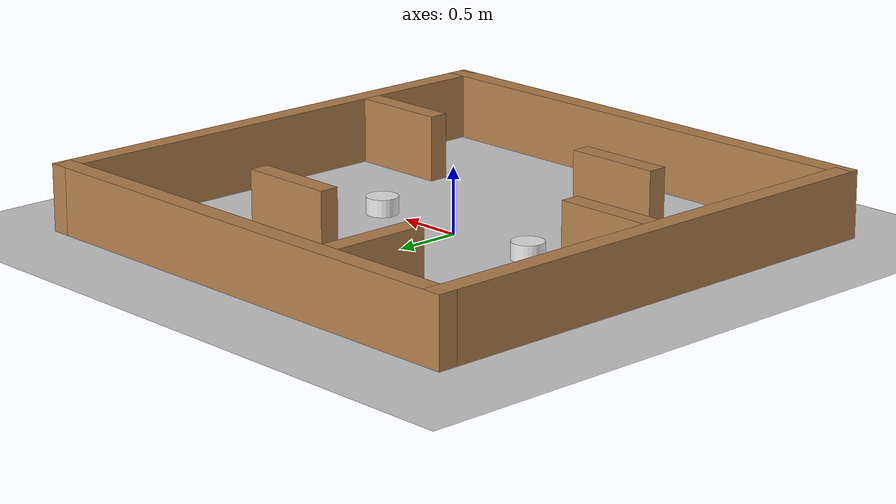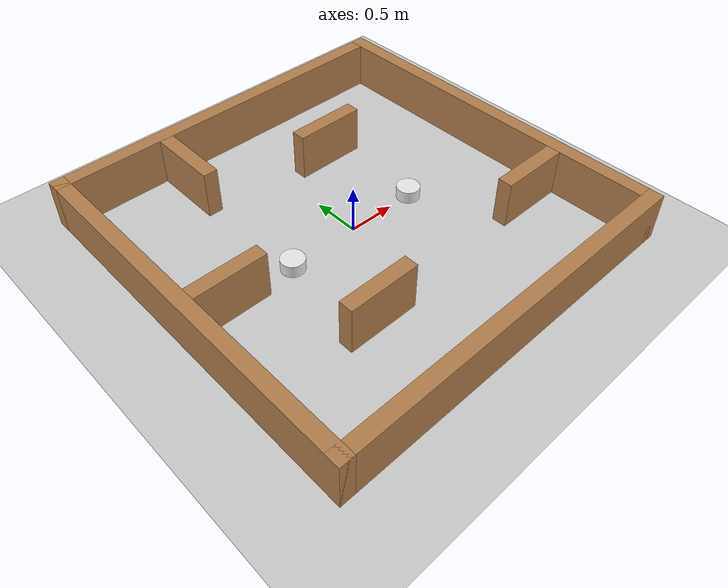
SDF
<sdf version='1.4'>
  <world name='default'>
    <!-- A global light source -->
    <include>
      <uri>model://sun</uri>
    </include>

    <!-- A ground plane -->
    <include>
      <uri>model://ground_plane</uri>
    </include>

    <physics type="ode">
      <real_time_update_rate>1000.0</real_time_update_rate>
      <max_step_size>0.001</max_step_size>
      <real_time_factor>1</real_time_factor>
      <ode>
        <solver>
          <type>quick</type>
          <iters>150</iters>
          <precon_iters>0</precon_iters>
          <sor>1.400000</sor>
          <use_dynamic_moi_rescaling>1</use_dynamic_moi_rescaling>
        </solver>
        <constraints>
          <cfm>0.00001</cfm>
          <erp>0.2</erp>
          <contact_max_correcting_vel>2000.000000</contact_max_correcting_vel>
          <contact_surface_layer>0.01000</contact_surface_layer>
        </constraints>
      </ode>
    </physics>

    <model name='map4'>
        <pose frame=''>0 0 0 0 -0 0</pose>
        <link name='Wall_1'>
        <collision name='Wall_1_Collision'>
            <geometry>
            <box>
                <size>4 0.15 0.5</size>
            </box>
            </geometry>
            <pose frame=''>0 0 0.25 0 -0 0</pose>
        </collision>
        <visual name='Wall_1_Visual'>
            <pose frame=''>0 0 0.25 0 -0 0</pose>
            <geometry>
            <box>
                <size>4 0.15 0.5</size>
            </box>
            </geometry>
            <material>
            <script>
                <uri>file://media/materials/scripts/gazebo.material</uri>
                <name>Gazebo/Wood</name>
            </script>
            <ambient>1 1 1 1</ambient>
            </material>
            <meta>
            <layer>0</layer>
            </meta>
        </visual>
        <pose frame=''>-1.925 -0 0 0 -0 -1.5708</pose>
        </link>
        <link name='Wall_10'>
        <collision name='Wall_10_Collision'>
            <geometry>
            <box>
                <size>0.75 0.15 0.5</size>
            </box>
            </geometry>
            <pose frame=''>0 0 0.25 0 -0 0</pose>
        </collision>
        <visual name='Wall_10_Visual'>
            <pose frame=''>0 0 0.25 0 -0 0</pose>
            <geometry>
            <box>
                <size>0.75 0.15 0.5</size>
            </box>
            </geometry>
            <material>
            <script>
                <uri>file://media/materials/scripts/gazebo.material</uri>
                <name>Gazebo/Wood</name>
            </script>
            <ambient>1 1 1 1</ambient>
            </material>
            <meta>
            <layer>0</layer>
            </meta>
        </visual>
        <pose frame=''>-0.815 1.475 0 0 -0 -1.5708</pose>
        </link>
        <link name='Wall_12'>
        <collision name='Wall_12_Collision'>
            <geometry>
            <box>
                <size>0.75 0.15 0.5</size>
            </box>
            </geometry>
            <pose frame=''>0 0 0.25 0 -0 0</pose>
        </collision>
        <visual name='Wall_12_Visual'>
            <pose frame=''>0 0 0.25 0 -0 0</pose>
            <geometry>
            <box>
                <size>0.75 0.15 0.5</size>
            </box>
            </geometry>
            <material>
            <script>
                <uri>file://media/materials/scripts/gazebo.material</uri>
                <name>Gazebo/Wood</name>
            </script>
            <ambient>1 1 1 1</ambient>
            </material>
            <meta>
            <layer>0</layer>
            </meta>
        </visual>
        <pose frame=''>-0.65 -1.0 0 0 -0 3.14159</pose>
        </link>
        <link name='Wall_16'>
        <collision name='Wall_16_Collision'>
            <geometry>
            <box>
                <size>0.75 0.15 0.5</size>
            </box>
            </geometry>
            <pose frame=''>0 0 0.25 0 -0 0</pose>
        </collision>
        <visual name='Wall_16_Visual'>
            <pose frame=''>0 0 0.25 0 -0 0</pose>
            <geometry>
            <box>
                <size>0.75 0.15 0.5</size>
            </box>
            </geometry>
            <material>
            <script>
                <uri>file://media/materials/scripts/gazebo.material</uri>
                <name>Gazebo/Wood</name>
            </script>
            <ambient>1 1 1 1</ambient>
            </material>
            <meta>
            <layer>0</layer>
            </meta>
        </visual>
        <pose frame=''>0.55 1.0 0 0 -0 0</pose>
        </link>
        <link name='Wall_2'>
        <collision name='Wall_2_Collision'>
            <geometry>
            <box>
                <size>4 0.15 0.5</size>
            </box>
            </geometry>
            <pose frame=''>0 0 0.25 0 -0 0</pose>
        </collision>
        <visual name='Wall_2_Visual'>
            <pose frame=''>0 0 0.25 0 -0 0</pose>
            <geometry>
            <box>
                <size>4 0.15 0.5</size>
            </box>
            </geometry>
            <material>
            <script>
                <uri>file://media/materials/scripts/gazebo.material</uri>
                <name>Gazebo/Wood</name>
            </script>
            <ambient>1 1 1 1</ambient>
            </material>
            <meta>
            <layer>0</layer>
            </meta>
        </visual>
        <pose frame=''>0 -1.925 0 0 -0 0</pose>
        </link>
        <link name='Wall_3'>
        <collision name='Wall_3_Collision'>
            <geometry>
            <box>
                <size>4 0.15 0.5</size>
            </box>
            </geometry>
            <pose frame=''>0 0 0.25 0 -0 0</pose>
        </collision>
        <visual name='Wall_3_Visual'>
            <pose frame=''>0 0 0.25 0 -0 0</pose>
            <geometry>
            <box>
                <size>4 0.15 0.5</size>
            </box>
            </geometry>
            <material>
            <script>
                <uri>file://media/materials/scripts/gazebo.material</uri>
                <name>Gazebo/Wood</name>
            </script>
            <ambient>1 1 1 1</ambient>
            </material>
            <meta>
            <layer>0</layer>
            </meta>
        </visual>
        <pose frame=''>1.925 -0 0 0 -0 1.5708</pose>
        </link>
        <link name='Wall_4'>
        <collision name='Wall_4_Collision'>
            <geometry>
            <box>
                <size>4 0.15 0.5</size>
            </box>
            </geometry>
            <pose frame=''>0 0 0.25 0 -0 0</pose>
        </collision>
        <visual name='Wall_4_Visual'>
            <pose frame=''>0 0 0.25 0 -0 0</pose>
            <geometry>
            <box>
                <size>4 0.15 0.5</size>
            </box>
            </geometry>
            <material>
            <script>
                <uri>file://media/materials/scripts/gazebo.material</uri>
                <name>Gazebo/Wood</name>
            </script>
            <ambient>1 1 1 1</ambient>
            </material>
            <meta>
            <layer>0</layer>
            </meta>
        </visual>
        <pose frame=''>0 1.925 0 0 -0 3.14159</pose>
        </link>
        <link name='Wall_6'>
        <collision name='Wall_6_Collision'>
            <geometry>
            <box>
                <size>0.75 0.15 0.5</size>
            </box>
            </geometry>
            <pose frame=''>0 0 0.25 0 -0 0</pose>
        </collision>
        <visual name='Wall_6_Visual'>
            <pose frame=''>0 0 0.25 0 -0 0</pose>
            <geometry>
            <box>
                <size>0.75 0.15 0.5</size>
            </box>
            </geometry>
            <material>
            <script>
                <uri>file://media/materials/scripts/gazebo.material</uri>
                <name>Gazebo/Wood</name>
            </script>
            <ambient>1 1 1 1</ambient>
            </material>
            <meta>
            <layer>0</layer>
            </meta>
        </visual>
        <pose frame=''>-1.475 -0.045 0 0 -0 0</pose>
        </link>
        <link name='Wall_8'>
        <collision name='Wall_8_Collision'>
            <geometry>
            <box>
                <size>0.75 0.15 0.5</size>
            </box>
            </geometry>
            <pose frame=''>0 0 0.25 0 -0 0</pose>
        </collision>
        <visual name='Wall_8_Visual'>
            <pose frame=''>0 0 0.25 0 -0 0</pose>
            <geometry>
            <box>
                <size>0.75 0.15 0.5</size>
            </box>
            </geometry>
            <material>
            <script>
                <uri>file://media/materials/scripts/gazebo.material</uri>
                <name>Gazebo/Wood</name>
            </script>
            <ambient>1 1 1 1</ambient>
            </material>
            <meta>
            <layer>0</layer>
            </meta>
        </visual>
        <pose frame=''>1.475 -0.885 0 0 -0 3.14159</pose>
        </link>
        <static>1</static>
    </model>

    <model name='obstacle'>
      <pose frame=''>0 0 0 0 -0 0</pose>
      <link name='obstacle'>

        <collision name='obstacle_2'>
          <pose>-0.75 0 0 0 0 0</pose>
          <geometry>
            <cylinder>
              <radius>0.12</radius>
              <length>0.25</length>
            </cylinder>
          </geometry>
          <max_contacts>10</max_contacts>
          <surface>
            <bounce/>
            <friction>
              <ode/>
            </friction>
            <contact>
              <ode/>
            </contact>
          </surface>
        </collision>

        <visual name='obstacle_2'>
          <pose>-0.75 0 0 0 0 0</pose>
          <geometry>
            <cylinder>
              <radius>0.12</radius>
              <length>0.25</length>
            </cylinder>
          </geometry>
          <material>
            <script>
              <uri>file://media/materials/scripts/gazebo.material</uri>
              <name>Gazebo/White</name>
            </script>
          </material>
        </visual>

        <collision name='obstacle_4'>
          <pose>0.75 0 0 0 0 0</pose>
          <geometry>
            <cylinder>
              <radius>0.12</radius>
              <length>0.25</length>
            </cylinder>
          </geometry>
          <max_contacts>10</max_contacts>
          <surface>
            <bounce/>
            <friction>
              <ode/>
            </friction>
            <contact>
              <ode/>
            </contact>
          </surface>
        </collision>

        <visual name='obstacle_4'>
          <pose>0.75 0 0 0 0 0</pose>
          <geometry>
            <cylinder>
              <radius>0.12</radius>
              <length>0.25</length>
            </cylinder>
          </geometry>
          <material>
            <script>
              <uri>file://media/materials/scripts/gazebo.material</uri>
              <name>Gazebo/White</name>
            </script>
          </material>
        </visual>

      </link>
    </model>

    <scene>
      <ambient>0.4 0.4 0.4 1</ambient>
      <background>0.7 0.7 0.7 1</background>
      <shadows>true</shadows>
    </scene>

    <gui fullscreen='0'>
      <camera name='user_camera'>
        <pose>0.0 0.0 17.0 0 1.5708 0</pose>
        <view_controller>orbit</view_controller>
      </camera>
    </gui>
  </world>
</sdf>
